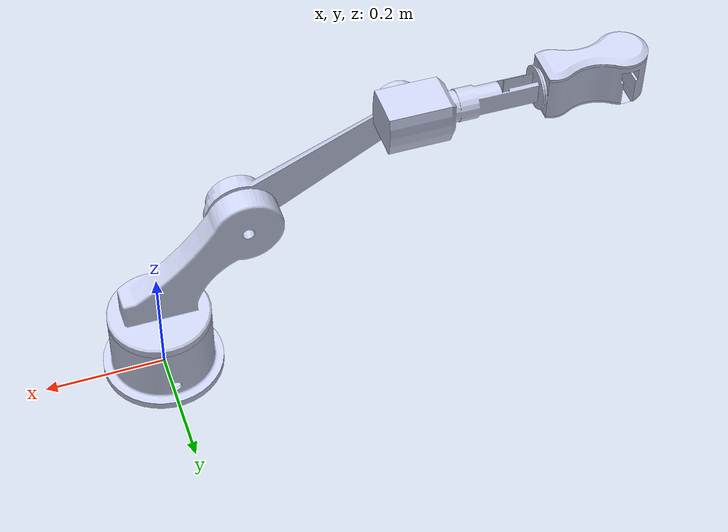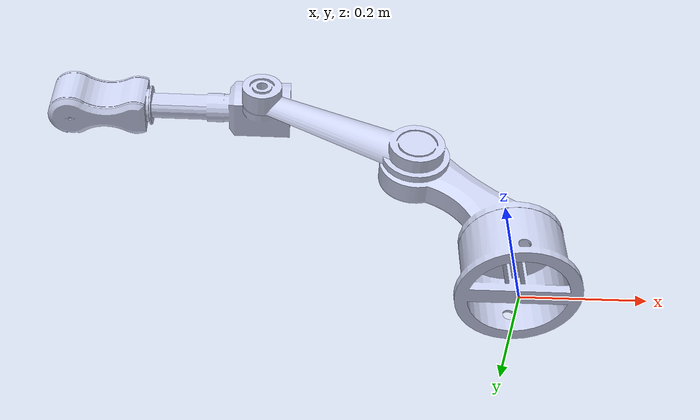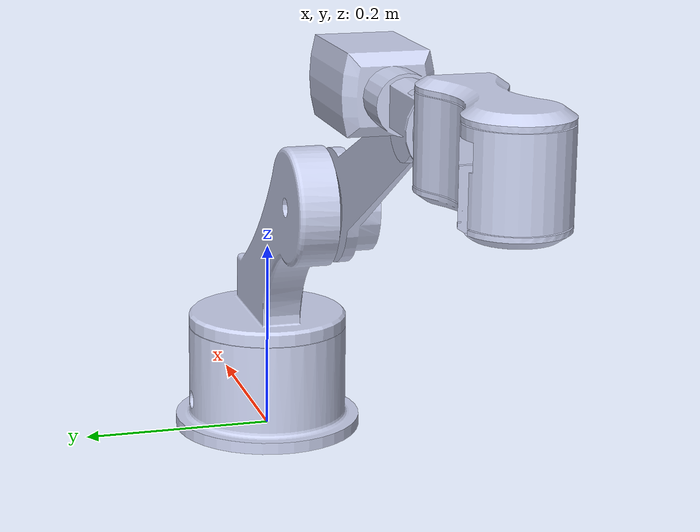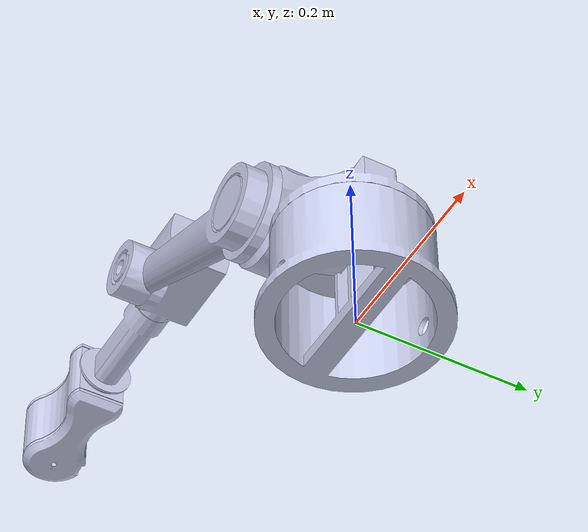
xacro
<?xml version="1.0"?>
<robot xmlns:xacro="http://www.ros.org/wiki/xacro" name="robot">
    <xacro:arg name="initial_positions_file" default="initial_positions.yaml" />

    <!-- Import robot urdf file -->
    <xacro:include filename="$(find robotic_arm)/models/robot_arm.urdf.xacro" />

    <!-- Import control_xacro -->
    <xacro:include filename="robot.ros2_control.xacro" />

    <xacro:robot_ros2_control name="FakeSystem" initial_positions_file="$(arg initial_positions_file)"/>

</robot>

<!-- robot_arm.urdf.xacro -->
<robot xmlns:xacro="http://www.ros.org/wiki/xacro" name="robotic_arm">
	<xacro:include filename="robot_arm_core.xacro" />
    <xacro:include filename="ros2_control.xacro" />
</robot>

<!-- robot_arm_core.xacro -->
<robot xmlns:xacro="http://www.ros.org/wiki/xacro" name="robotic_arm">

  <link name="world" />
	<joint name="base_joint" type="fixed">
		<parent link="world" />
		<child link="base_link" />
		<origin rpy="0 0 3.142" xyz="0.0 0.0 0.0" />
	</joint>
  <link
    name="base_link">
    <inertial>
      <origin
        xyz="-2.54822930811915E-09 0.00606244117318527 0.0439273833673697"
        rpy="0 0 0" />
      <mass
        value="0.563134616214546" />
      <inertia
        ixx="0.00235189965302231"
        ixy="-7.03692630475745E-10"
        ixz="-2.36827318554001E-12"
        iyy="0.00234682358725741"
        iyz="-0.000111872512052699"
        izz="0.00324785127223651" />
    </inertial>
    <visual>
      <origin
        xyz="0 0 0"
        rpy="0 0 0" />
      <geometry>
        <mesh
          filename="file:///home/brains/Desktop/robotic_arm/src/robotic_arm/meshes/base_link.STL" />
      </geometry>
      <material
        name="">
        <color
          rgba="0.792156862745098 0.819607843137255 0.933333333333333 1" />
      </material>
    </visual>
    <collision>
      <origin
        xyz="0 0 0"
        rpy="0 0 0" />
      <geometry>
        <mesh
          filename="file:///home/brains/Desktop/robotic_arm/src/robotic_arm/meshes/base_link.STL" />
      </geometry>
    </collision>
  </link>
  <link
    name="link_1">
    <inertial>
      <origin
        xyz="0.0653578188339992 0.0020565549859432 0.0762669833315888"
        rpy="0 0 0" />
      <mass
        value="1.45594336973745" />
      <inertia
        ixx="0.00750010742841235"
        ixy="-6.70723882397028E-05"
        ixz="-0.00600095399245133"
        iyy="0.0145423964972034"
        iyz="-8.19377169668812E-05"
        izz="0.00867931656150517" />
    </inertial>
    <visual>
      <origin
        xyz="0 0 0"
        rpy="0 0 0" />
      <geometry>
        <mesh
          filename="file:///home/brains/Desktop/robotic_arm/src/robotic_arm/meshes/link_1.STL" />
      </geometry>
      <material
        name="">
        <color
          rgba="0.792156862745098 0.819607843137255 0.933333333333333 1" />
      </material>
    </visual>
    <collision>
      <origin
        xyz="0 0 0"
        rpy="0 0 0" />
      <geometry>
        <mesh
          filename="file:///home/brains/Desktop/robotic_arm/src/robotic_arm/meshes/link_1.STL" />
      </geometry>
    </collision>
  </link>
  <joint
    name="joint_1"
    type="revolute">
    <origin
      xyz="0 0 0.1285"
      rpy="0 0 0" />
    <parent
      link="base_link" />
    <child
      link="link_1" />
    <axis
      xyz="0 0 1" />
    <limit
      lower="-3.1416"
      upper="3.1416"
      effort="300"
      velocity="3" />
  </joint>
  <link
    name="link_2">
    <inertial>
      <origin
        xyz="0.101431964558784 0.0160412048867569 0.0526572060471867"
        rpy="0 0 0" />
      <mass
        value="0.680974186241497" />
      <inertia
        ixx="0.00235135787645393"
        ixy="5.5007725153141E-05"
        ixz="-0.00380698989134493"
        iyy="0.00992615920208125"
        iyz="2.85566303155651E-05"
        izz="0.0077083015658875" />
    </inertial>
    <visual>
      <origin
        xyz="0 0 0"
        rpy="0 0 0" />
      <geometry>
        <mesh
          filename="file:///home/brains/Desktop/robotic_arm/src/robotic_arm/meshes/link_2.STL" />
      </geometry>
      <material
        name="">
        <color
          rgba="0.792156862745098 0.819607843137255 0.933333333333333 1" />
      </material>
    </visual>
    <collision>
      <origin
        xyz="0 0 0"
        rpy="0 0 0" />
      <geometry>
        <mesh
          filename="file:///home/brains/Desktop/robotic_arm/src/robotic_arm/meshes/link_2.STL" />
      </geometry>
    </collision>
  </link>
  <joint
    name="joint_2"
    type="revolute">
    <origin
      xyz="0.15 0.027 0.152"
      rpy="0 0 0" />
    <parent
      link="link_1" />
    <child
      link="link_2" />
    <axis
      xyz="0 -1 0" />
    <limit
      lower="-1.5"
      upper="1.5708"
      effort="300"
      velocity="3" />
  </joint>
  <link
    name="link_3">
    <inertial>
      <origin
        xyz="0.0298064804142811 -0.0415786769402245 0.0333315004867772"
        rpy="0 0 0" />
      <mass
        value="0.778186643162039" />
      <inertia
        ixx="0.00063905283079692"
        ixy="2.13657560744369E-05"
        ixz="2.72110765072652E-06"
        iyy="0.0029678296765164"
        iyz="3.4710391514597E-05"
        izz="0.00298767359266443" />
    </inertial>
    <visual>
      <origin
        xyz="0 0 0"
        rpy="0 0 0" />
      <geometry>
        <mesh
          filename="file:///home/brains/Desktop/robotic_arm/src/robotic_arm/meshes/link_3.STL" />
      </geometry>
      <material
        name="">
        <color
          rgba="0.792156862745098 0.819607843137255 0.933333333333333 1" />
      </material>
    </visual>
    <collision>
      <origin
        xyz="0 0 0"
        rpy="0 0 0" />
      <geometry>
        <mesh
          filename="file:///home/brains/Desktop/robotic_arm/src/robotic_arm/meshes/link_3.STL" />
      </geometry>
    </collision>
  </link>
  <joint
    name="joint_3"
    type="revolute">
    <origin
      xyz="0.26626 0 0.13822"
      rpy="0 0 0" />
    <parent
      link="link_2" />
    <child
      link="link_3" />
    <axis
      xyz="0 -1 0" />
    <limit
      lower="-2.2"
      upper="3.1"
      effort="300"
      velocity="3" />
  </joint>
  <link
    name="link_4">
    <inertial>
      <origin
        xyz="0.0888627632061177 0.00134563154756934 0.000588329964855916"
        rpy="0 0 0" />
      <mass
        value="0.835937225112789" />
      <inertia
        ixx="0.000558048680532432"
        ixy="-5.59329476734029E-05"
        ixz="-9.48124558843511E-06"
        iyy="0.00246862786118713"
        iyz="3.14125819201248E-06"
        izz="0.00244253536572425" />
    </inertial>
    <visual>
      <origin
        xyz="0 0 0"
        rpy="0 0 0" />
      <geometry>
        <mesh
          filename="file:///home/brains/Desktop/robotic_arm/src/robotic_arm/meshes/link_4.STL" />
      </geometry>
      <material
        name="">
        <color
          rgba="0.792156862745098 0.819607843137255 0.933333333333333 1" />
      </material>
    </visual>
    <collision>
      <origin
        xyz="0 0 0"
        rpy="0 0 0" />
      <geometry>
        <mesh
          filename="file:///home/brains/Desktop/robotic_arm/src/robotic_arm/meshes/link_4.STL" />
      </geometry>
    </collision>
  </link>
  <joint
    name="joint_4"
    type="revolute">
    <origin
      xyz="0.204 -0.0425 0.035"
      rpy="0 0 0" />
    <parent
      link="link_3" />
    <child
      link="link_4" />
    <axis
      xyz="-1 0 0" />
    <limit
      lower="-3.1416"
      upper="3.1416"
      effort="300"
      velocity="3" />
  </joint>
</robot>
